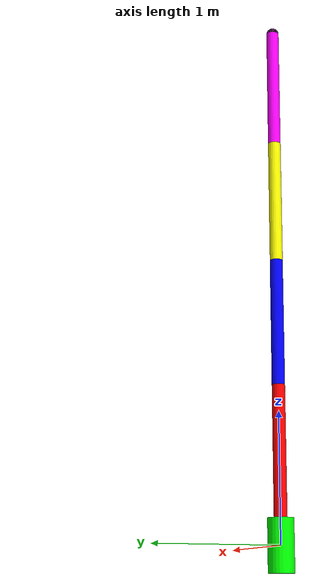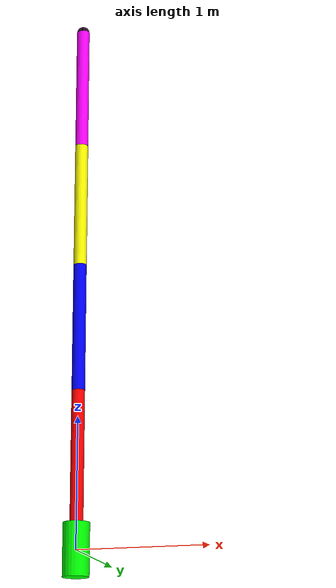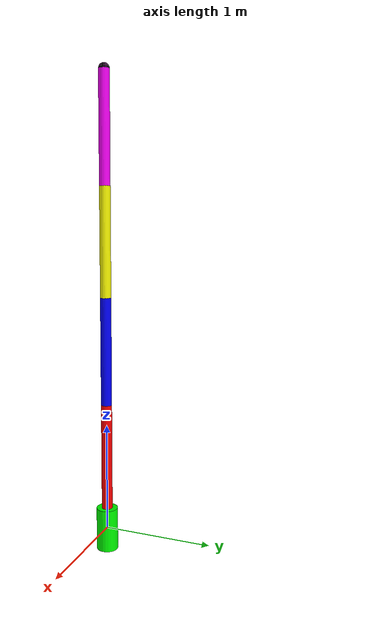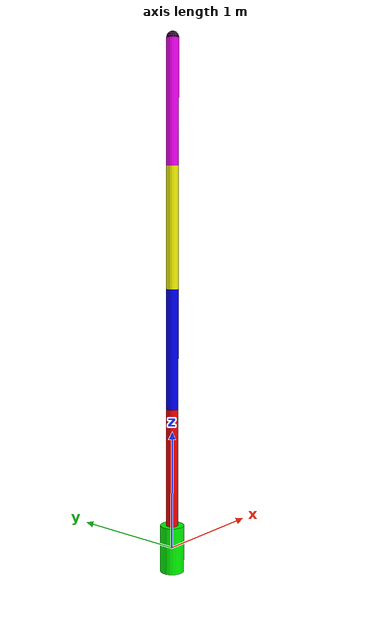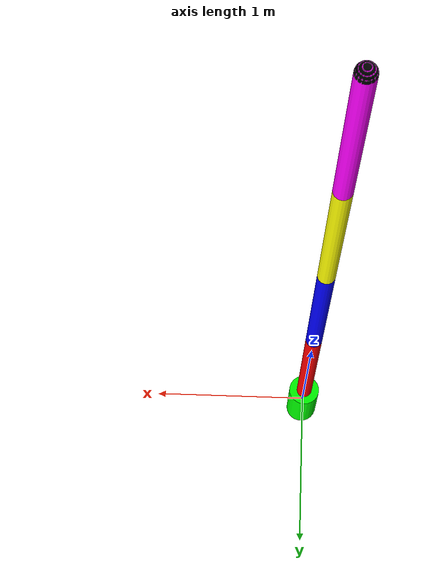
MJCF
<mujoco model="3dof_arm">
    <worldbody>
        <light diffuse=".5 .5 .5" pos="0 0 3" dir="0 0 -1"/>
        <body name="base" pos="0 0 0">
            <geom type="cylinder" size="0.1 0.2" rgba="0 1 0 1"/>
            <body name="link1" pos="0 0 0.2">
                <joint name="joint1" type="hinge" axis="0 0 1"/>
                <geom type="capsule" size="0.05 0.5" pos="0 0 0.5" rgba="1 0 0 1"/>
                <body name="dummy_motor_j2" pos="0 0 1">
                    <!-- The actuator still drives this joint -->
                    <joint name="joint2" type="hinge" axis="0 1 0"/>
                    <!-- Small invisible geom to give the motor rotor physical inertia -->
                    <geom type="cylinder" size="0.04 0.05" rgba="0 0 0 0" mass="0.5"/>

                    <!-- The actual heavy shoulder link, attached to the dummy motor -->
                    <body name="link2" pos="0 0 0">
                        <!-- Passive flexible joint representing the physical gearbox compliance -->
                        <joint name="joint2_flex" type="hinge" axis="0 1 0" stiffness="50000" damping="10"/>
                        <geom type="capsule" size="0.05 0.5" pos="0 0 0.5" rgba="0 0 1 1"/>

                        <!-- Rest of the arm remains exactly the same -->
                        <body name="link3" pos="0 0 1">
                            <joint name="joint3" type="hinge" axis="0 1 0"/>
                            <geom type="capsule" size="0.05 0.5" pos="0 0 0.5" rgba="1 1 0 1"/>
                            <body name="link4" pos="0 0 1">
                                <joint name="joint4" type="hinge" axis="0 1 0"/>
                                <geom type="capsule" size="0.05 0.5" pos="0 0 0.5" rgba="1 0 1 1"/>
                                <site name="end_effector" pos="0 0 1" type="sphere" size="0.05" rgba="0 0 0 1"/>
                            </body>
                        </body>
                    </body>
                </body>
            </body>
        </body>
    </worldbody>

    <actuator>
        <motor joint="joint1" name="motor1" ctrlrange="-500 500" ctrllimited="true"/>
        <motor joint="joint2" name="motor2" ctrlrange="-500 500" ctrllimited="true"/>
        <motor joint="joint3" name="motor3" ctrlrange="-500 500" ctrllimited="true"/>
	<motor joint="joint4" name="motor4" ctrlrange="-500 500" ctrllimited="true"/>

    </actuator>

    <sensor>
        <jointpos joint="joint1" name="enc_pos_j1"/>
        <jointpos joint="joint2" name="enc_pos_j2"/>
        <jointpos joint="joint3" name="enc_pos_j3"/>
        <jointpos joint="joint4" name="enc_pos_j4"/>

        <jointvel joint="joint1" name="enc_vel_j1"/>
        <jointvel joint="joint2" name="enc_vel_j2"/>
	<jointvel joint="joint3" name="enc_vel_j3"/>
        <jointvel joint="joint4" name="enc_vel_j4"/>
    </sensor>

    <keyframe>
        <key name="home_bent" qpos="0.1 0.1 0 0.1 0.1" />
    </keyframe>
</mujoco>
